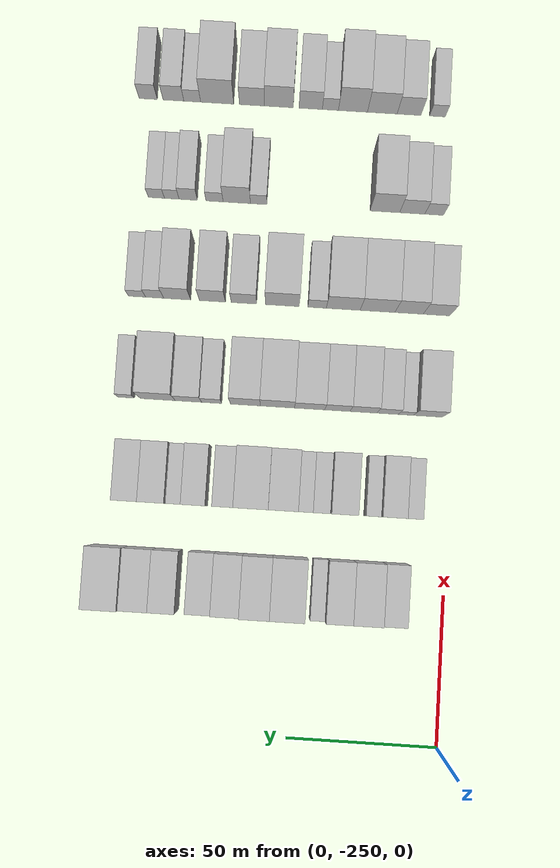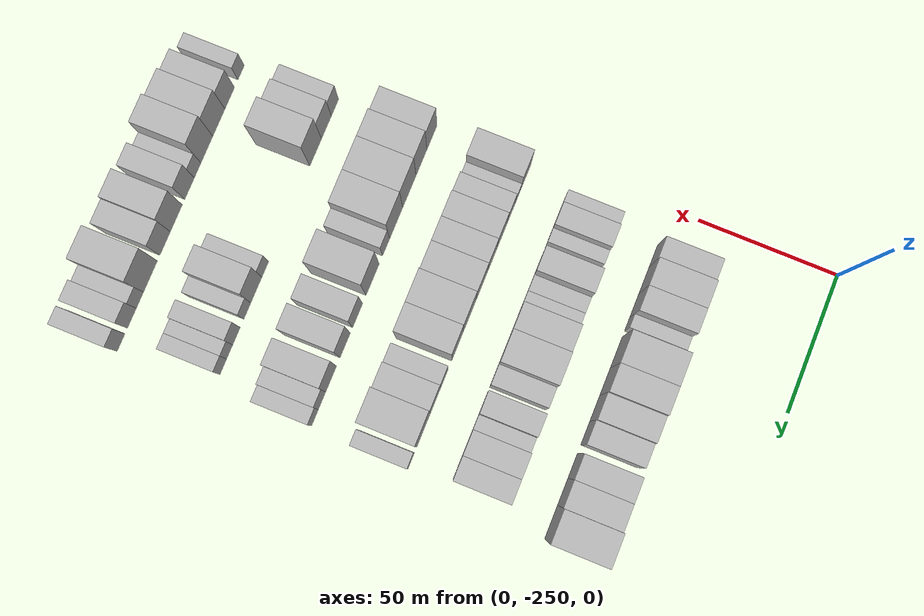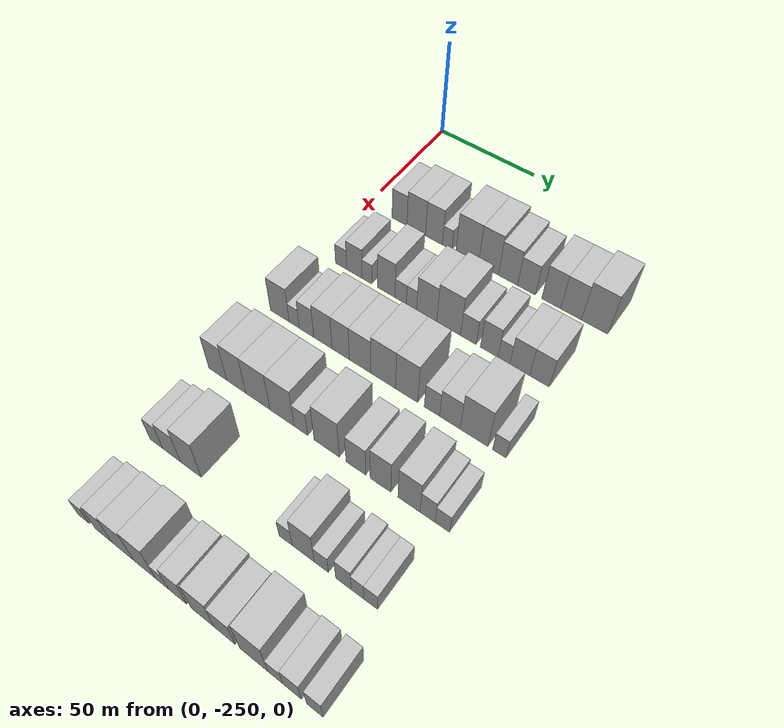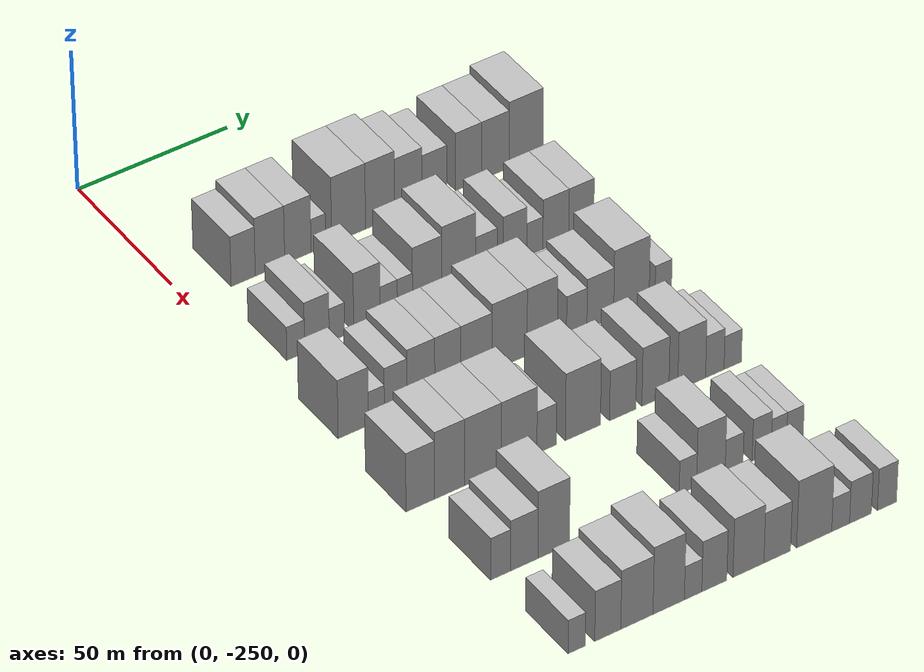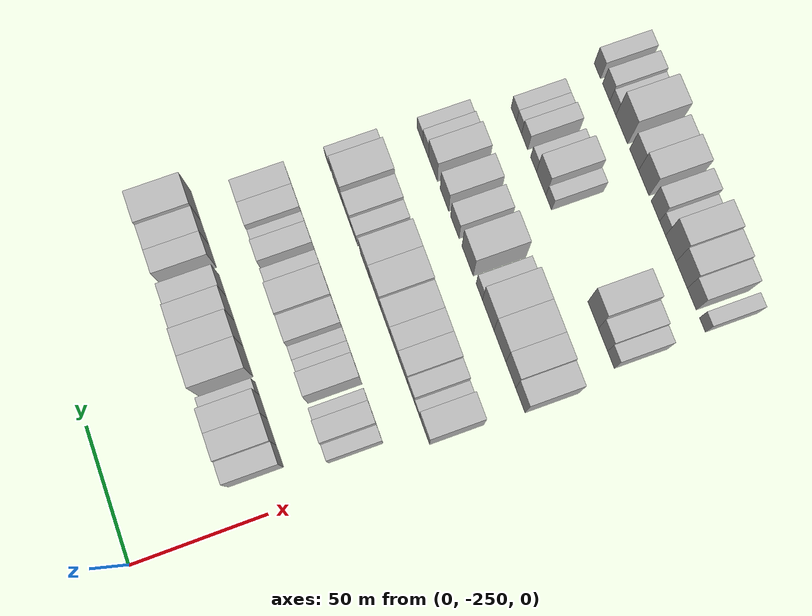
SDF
<sdf version="1.6">
 <world name="default">
  <model name="building_33">
   <static>1</static>
   <pose>50.0000 -232.6946 0 0.000000 0.000000 0.000000</pose>
   <link name="link">
    <pose>0 0 9.00 0 0 0</pose>
    <collision name="collision"><geometry><box><size>20.0000 7.9936 18.0000</size></box></geometry></collision>
    <visual name="visual">
     <cast_shadows>0</cast_shadows>
     <geometry><box><size>20.0000 7.9936 18.0000</size></box></geometry>
     <material>
      <script>
       <uri>model://HANNAS_wall/materials/scripts</uri>
       <uri>model://HANNAS_wall/materials/textures</uri>
       <name>vrc/HANNAS_wall</name>
      </script>
     </material>
    </visual>
   </link>
  </model>
  <model name="building_34">
   <static>1</static>
   <pose>50.0000 -223.8232 0 0.000000 0.000000 0.000000</pose>
   <link name="link">
    <pose>0 0 10.50 0 0 0</pose>
    <collision name="collision"><geometry><box><size>20.0000 9.7493 21.0000</size></box></geometry></collision>
    <visual name="visual">
     <cast_shadows>0</cast_shadows>
     <geometry><box><size>20.0000 9.7493 21.0000</size></box></geometry>
     <material>
      <script>
       <uri>model://HANNAS_wall/materials/scripts</uri>
       <uri>model://HANNAS_wall/materials/textures</uri>
       <name>vrc/HANNAS_wall</name>
      </script>
     </material>
    </visual>
   </link>
  </model>
  <model name="building_35">
   <static>1</static>
   <pose>50.0000 -214.5663 0 0.000000 0.000000 0.000000</pose>
   <link name="link">
    <pose>0 0 10.50 0 0 0</pose>
    <collision name="collision"><geometry><box><size>20.0000 8.7644 21.0000</size></box></geometry></collision>
    <visual name="visual">
     <cast_shadows>0</cast_shadows>
     <geometry><box><size>20.0000 8.7644 21.0000</size></box></geometry>
     <material>
      <script>
       <uri>model://HANNAS_wall/materials/scripts</uri>
       <uri>model://HANNAS_wall/materials/textures</uri>
       <name>vrc/HANNAS_wall</name>
      </script>
     </material>
    </visual>
   </link>
  </model>
  <model name="building_36">
   <static>1</static>
   <pose>50.0000 -207.7610 0 0.000000 0.000000 0.000000</pose>
   <link name="link">
    <pose>0 0 6.00 0 0 0</pose>
    <collision name="collision"><geometry><box><size>20.0000 4.8462 12.0000</size></box></geometry></collision>
    <visual name="visual">
     <cast_shadows>0</cast_shadows>
     <geometry><box><size>20.0000 4.8462 12.0000</size></box></geometry>
     <material>
      <script>
       <uri>model://HANNAS_wall/materials/scripts</uri>
       <uri>model://HANNAS_wall/materials/textures</uri>
       <name>vrc/HANNAS_wall</name>
      </script>
     </material>
    </visual>
   </link>
  </model>
  <model name="building_37">
   <static>1</static>
   <pose>50.0000 -197.6678 0 0.000000 0.000000 0.000000</pose>
   <link name="link">
    <pose>0 0 12.00 0 0 0</pose>
    <collision name="collision"><geometry><box><size>20.0000 11.3402 24.0000</size></box></geometry></collision>
    <visual name="visual">
     <cast_shadows>0</cast_shadows>
     <geometry><box><size>20.0000 11.3402 24.0000</size></box></geometry>
     <material>
      <script>
       <uri>model://HANNAS_wall/materials/scripts</uri>
       <uri>model://HANNAS_wall/materials/textures</uri>
       <name>vrc/HANNAS_wall</name>
      </script>
     </material>
    </visual>
   </link>
  </model>
  <model name="building_38">
   <static>1</static>
   <pose>50.0000 -187.1057 0 0.000000 0.000000 0.000000</pose>
   <link name="link">
    <pose>0 0 12.00 0 0 0</pose>
    <collision name="collision"><geometry><box><size>20.0000 9.7839 24.0000</size></box></geometry></collision>
    <visual name="visual">
     <cast_shadows>0</cast_shadows>
     <geometry><box><size>20.0000 9.7839 24.0000</size></box></geometry>
     <material>
      <script>
       <uri>model://HANNAS_wall/materials/scripts</uri>
       <uri>model://HANNAS_wall/materials/textures</uri>
       <name>vrc/HANNAS_wall</name>
      </script>
     </material>
    </visual>
   </link>
  </model>
  <model name="building_39">
   <static>1</static>
   <pose>50.0000 -177.5722 0 0.000000 0.000000 0.000000</pose>
   <link name="link">
    <pose>0 0 10.50 0 0 0</pose>
    <collision name="collision"><geometry><box><size>20.0000 9.2833 21.0000</size></box></geometry></collision>
    <visual name="visual">
     <cast_shadows>0</cast_shadows>
     <geometry><box><size>20.0000 9.2833 21.0000</size></box></geometry>
     <material>
      <script>
       <uri>model://HANNAS_wall/materials/scripts</uri>
       <uri>model://HANNAS_wall/materials/textures</uri>
       <name>vrc/HANNAS_wall</name>
      </script>
     </material>
    </visual>
   </link>
  </model>
  <model name="building_40">
   <static>1</static>
   <pose>50.0000 -168.7454 0 0.000000 0.000000 0.000000</pose>
   <link name="link">
    <pose>0 0 9.00 0 0 0</pose>
    <collision name="collision"><geometry><box><size>20.0000 8.3702 18.0000</size></box></geometry></collision>
    <visual name="visual">
     <cast_shadows>0</cast_shadows>
     <geometry><box><size>20.0000 8.3702 18.0000</size></box></geometry>
     <material>
      <script>
       <uri>model://HANNAS_wall/materials/scripts</uri>
       <uri>model://HANNAS_wall/materials/textures</uri>
       <name>vrc/HANNAS_wall</name>
      </script>
     </material>
    </visual>
   </link>
  </model>
  <model name="building_41">
   <static>1</static>
   <pose>50.0000 -157.1957 0 0.000000 0.000000 0.000000</pose>
   <link name="link">
    <pose>0 0 10.50 0 0 0</pose>
    <collision name="collision"><geometry><box><size>20.0000 8.7293 21.0000</size></box></geometry></collision>
    <visual name="visual">
     <cast_shadows>0</cast_shadows>
     <geometry><box><size>20.0000 8.7293 21.0000</size></box></geometry>
     <material>
      <script>
       <uri>model://HANNAS_wall/materials/scripts</uri>
       <uri>model://HANNAS_wall/materials/textures</uri>
       <name>vrc/HANNAS_wall</name>
      </script>
     </material>
    </visual>
   </link>
  </model>
  <model name="building_42">
   <static>1</static>
   <pose>50.0000 -148.1162 0 0.000000 0.000000 0.000000</pose>
   <link name="link">
    <pose>0 0 10.50 0 0 0</pose>
    <collision name="collision"><geometry><box><size>20.0000 9.4296 21.0000</size></box></geometry></collision>
    <visual name="visual">
     <cast_shadows>0</cast_shadows>
     <geometry><box><size>20.0000 9.4296 21.0000</size></box></geometry>
     <material>
      <script>
       <uri>model://HANNAS_wall/materials/scripts</uri>
       <uri>model://HANNAS_wall/materials/textures</uri>
       <name>vrc/HANNAS_wall</name>
      </script>
     </material>
    </visual>
   </link>
  </model>
  <model name="building_43">
   <static>1</static>
   <pose>50.0000 -137.5427 0 0.000000 0.000000 0.000000</pose>
   <link name="link">
    <pose>0 0 12.00 0 0 0</pose>
    <collision name="collision"><geometry><box><size>20.0000 11.7174 24.0000</size></box></geometry></collision>
    <visual name="visual">
     <cast_shadows>0</cast_shadows>
     <geometry><box><size>20.0000 11.7174 24.0000</size></box></geometry>
     <material>
      <script>
       <uri>model://HANNAS_wall/materials/scripts</uri>
       <uri>model://HANNAS_wall/materials/textures</uri>
       <name>vrc/HANNAS_wall</name>
      </script>
     </material>
    </visual>
   </link>
  </model>
  <model name="building_157">
   <static>1</static>
   <pose>85.0000 -237.7383 0 0.000000 0.000000 0.000000</pose>
   <link name="link">
    <pose>0 0 6.00 0 0 0</pose>
    <collision name="collision"><geometry><box><size>20.0000 5.8213 12.0000</size></box></geometry></collision>
    <visual name="visual">
     <cast_shadows>0</cast_shadows>
     <geometry><box><size>20.0000 5.8213 12.0000</size></box></geometry>
     <material>
      <script>
       <uri>model://HANNAS_wall/materials/scripts</uri>
       <uri>model://HANNAS_wall/materials/textures</uri>
       <name>vrc/HANNAS_wall</name>
      </script>
     </material>
    </visual>
   </link>
  </model>
  <model name="building_158">
   <static>1</static>
   <pose>85.0000 -230.7864 0 0.000000 0.000000 0.000000</pose>
   <link name="link">
    <pose>0 0 9.00 0 0 0</pose>
    <collision name="collision"><geometry><box><size>20.0000 8.0825 18.0000</size></box></geometry></collision>
    <visual name="visual">
     <cast_shadows>0</cast_shadows>
     <geometry><box><size>20.0000 8.0825 18.0000</size></box></geometry>
     <material>
      <script>
       <uri>model://HANNAS_wall/materials/scripts</uri>
       <uri>model://HANNAS_wall/materials/textures</uri>
       <name>vrc/HANNAS_wall</name>
      </script>
     </material>
    </visual>
   </link>
  </model>
  <model name="building_159">
   <static>1</static>
   <pose>85.0000 -224.2252 0 0.000000 0.000000 0.000000</pose>
   <link name="link">
    <pose>0 0 6.00 0 0 0</pose>
    <collision name="collision"><geometry><box><size>20.0000 5.0398 12.0000</size></box></geometry></collision>
    <visual name="visual">
     <cast_shadows>0</cast_shadows>
     <geometry><box><size>20.0000 5.0398 12.0000</size></box></geometry>
     <material>
      <script>
       <uri>model://HANNAS_wall/materials/scripts</uri>
       <uri>model://HANNAS_wall/materials/textures</uri>
       <name>vrc/HANNAS_wall</name>
      </script>
     </material>
    </visual>
   </link>
  </model>
  <model name="building_160">
   <static>1</static>
   <pose>85.0000 -214.3400 0 0.000000 0.000000 0.000000</pose>
   <link name="link">
    <pose>0 0 10.50 0 0 0</pose>
    <collision name="collision"><geometry><box><size>20.0000 8.7306 21.0000</size></box></geometry></collision>
    <visual name="visual">
     <cast_shadows>0</cast_shadows>
     <geometry><box><size>20.0000 8.7306 21.0000</size></box></geometry>
     <material>
      <script>
       <uri>model://HANNAS_wall/materials/scripts</uri>
       <uri>model://HANNAS_wall/materials/textures</uri>
       <name>vrc/HANNAS_wall</name>
      </script>
     </material>
    </visual>
   </link>
  </model>
  <model name="building_161">
   <static>1</static>
   <pose>85.0000 -207.1193 0 0.000000 0.000000 0.000000</pose>
   <link name="link">
    <pose>0 0 6.00 0 0 0</pose>
    <collision name="collision"><geometry><box><size>20.0000 5.7108 12.0000</size></box></geometry></collision>
    <visual name="visual">
     <cast_shadows>0</cast_shadows>
     <geometry><box><size>20.0000 5.7108 12.0000</size></box></geometry>
     <material>
      <script>
       <uri>model://HANNAS_wall/materials/scripts</uri>
       <uri>model://HANNAS_wall/materials/textures</uri>
       <name>vrc/HANNAS_wall</name>
      </script>
     </material>
    </visual>
   </link>
  </model>
  <model name="building_162">
   <static>1</static>
   <pose>85.0000 -201.7443 0 0.000000 0.000000 0.000000</pose>
   <link name="link">
    <pose>0 0 6.00 0 0 0</pose>
    <collision name="collision"><geometry><box><size>20.0000 5.0394 12.0000</size></box></geometry></collision>
    <visual name="visual">
     <cast_shadows>0</cast_shadows>
     <geometry><box><size>20.0000 5.0394 12.0000</size></box></geometry>
     <material>
      <script>
       <uri>model://HANNAS_wall/materials/scripts</uri>
       <uri>model://HANNAS_wall/materials/textures</uri>
       <name>vrc/HANNAS_wall</name>
      </script>
     </material>
    </visual>
   </link>
  </model>
  <model name="building_163">
   <static>1</static>
   <pose>85.0000 -194.3508 0 0.000000 0.000000 0.000000</pose>
   <link name="link">
    <pose>0 0 10.50 0 0 0</pose>
    <collision name="collision"><geometry><box><size>20.0000 9.7474 21.0000</size></box></geometry></collision>
    <visual name="visual">
     <cast_shadows>0</cast_shadows>
     <geometry><box><size>20.0000 9.7474 21.0000</size></box></geometry>
     <material>
      <script>
       <uri>model://HANNAS_wall/materials/scripts</uri>
       <uri>model://HANNAS_wall/materials/textures</uri>
       <name>vrc/HANNAS_wall</name>
      </script>
     </material>
    </visual>
   </link>
  </model>
  <model name="building_164">
   <static>1</static>
   <pose>85.0000 -183.8137 0 0.000000 0.000000 0.000000</pose>
   <link name="link">
    <pose>0 0 12.00 0 0 0</pose>
    <collision name="collision"><geometry><box><size>20.0000 11.3268 24.0000</size></box></geometry></collision>
    <visual name="visual">
     <cast_shadows>0</cast_shadows>
     <geometry><box><size>20.0000 11.3268 24.0000</size></box></geometry>
     <material>
      <script>
       <uri>model://HANNAS_wall/materials/scripts</uri>
       <uri>model://HANNAS_wall/materials/textures</uri>
       <name>vrc/HANNAS_wall</name>
      </script>
     </material>
    </visual>
   </link>
  </model>
  <model name="building_165">
   <static>1</static>
   <pose>85.0000 -174.5370 0 0.000000 0.000000 0.000000</pose>
   <link name="link">
    <pose>0 0 7.50 0 0 0</pose>
    <collision name="collision"><geometry><box><size>20.0000 7.2267 15.0000</size></box></geometry></collision>
    <visual name="visual">
     <cast_shadows>0</cast_shadows>
     <geometry><box><size>20.0000 7.2267 15.0000</size></box></geometry>
     <material>
      <script>
       <uri>model://HANNAS_wall/materials/scripts</uri>
       <uri>model://HANNAS_wall/materials/textures</uri>
       <name>vrc/HANNAS_wall</name>
      </script>
     </material>
    </visual>
   </link>
  </model>
  <model name="building_166">
   <static>1</static>
   <pose>85.0000 -164.9073 0 0.000000 0.000000 0.000000</pose>
   <link name="link">
    <pose>0 0 9.00 0 0 0</pose>
    <collision name="collision"><geometry><box><size>20.0000 8.0326 18.0000</size></box></geometry></collision>
    <visual name="visual">
     <cast_shadows>0</cast_shadows>
     <geometry><box><size>20.0000 8.0326 18.0000</size></box></geometry>
     <material>
      <script>
       <uri>model://HANNAS_wall/materials/scripts</uri>
       <uri>model://HANNAS_wall/materials/textures</uri>
       <name>vrc/HANNAS_wall</name>
      </script>
     </material>
    </visual>
   </link>
  </model>
  <model name="building_167">
   <static>1</static>
   <pose>85.0000 -158.2112 0 0.000000 0.000000 0.000000</pose>
   <link name="link">
    <pose>0 0 6.00 0 0 0</pose>
    <collision name="collision"><geometry><box><size>20.0000 5.3596 12.0000</size></box></geometry></collision>
    <visual name="visual">
     <cast_shadows>0</cast_shadows>
     <geometry><box><size>20.0000 5.3596 12.0000</size></box></geometry>
     <material>
      <script>
       <uri>model://HANNAS_wall/materials/scripts</uri>
       <uri>model://HANNAS_wall/materials/textures</uri>
       <name>vrc/HANNAS_wall</name>
      </script>
     </material>
    </visual>
   </link>
  </model>
  <model name="building_168">
   <static>1</static>
   <pose>85.0000 -151.1226 0 0.000000 0.000000 0.000000</pose>
   <link name="link">
    <pose>0 0 9.00 0 0 0</pose>
    <collision name="collision"><geometry><box><size>20.0000 8.8175 18.0000</size></box></geometry></collision>
    <visual name="visual">
     <cast_shadows>0</cast_shadows>
     <geometry><box><size>20.0000 8.8175 18.0000</size></box></geometry>
     <material>
      <script>
       <uri>model://HANNAS_wall/materials/scripts</uri>
       <uri>model://HANNAS_wall/materials/textures</uri>
       <name>vrc/HANNAS_wall</name>
      </script>
     </material>
    </visual>
   </link>
  </model>
  <model name="building_169">
   <static>1</static>
   <pose>85.0000 -142.4586 0 0.000000 0.000000 0.000000</pose>
   <link name="link">
    <pose>0 0 9.00 0 0 0</pose>
    <collision name="collision"><geometry><box><size>20.0000 8.5105 18.0000</size></box></geometry></collision>
    <visual name="visual">
     <cast_shadows>0</cast_shadows>
     <geometry><box><size>20.0000 8.5105 18.0000</size></box></geometry>
     <material>
      <script>
       <uri>model://HANNAS_wall/materials/scripts</uri>
       <uri>model://HANNAS_wall/materials/textures</uri>
       <name>vrc/HANNAS_wall</name>
      </script>
     </material>
    </visual>
   </link>
  </model>
  <model name="building_285">
   <static>1</static>
   <pose>120.0000 -241.5943 0 0.000000 0.000000 0.000000</pose>
   <link name="link">
    <pose>0 0 10.50 0 0 0</pose>
    <collision name="collision"><geometry><box><size>20.0000 9.8610 21.0000</size></box></geometry></collision>
    <visual name="visual">
     <cast_shadows>0</cast_shadows>
     <geometry><box><size>20.0000 9.8610 21.0000</size></box></geometry>
     <material>
      <script>
       <uri>model://HANNAS_wall/materials/scripts</uri>
       <uri>model://HANNAS_wall/materials/textures</uri>
       <name>vrc/HANNAS_wall</name>
      </script>
     </material>
    </visual>
   </link>
  </model>
  <model name="building_286">
   <static>1</static>
   <pose>120.0000 -234.0752 0 0.000000 0.000000 0.000000</pose>
   <link name="link">
    <pose>0 0 6.00 0 0 0</pose>
    <collision name="collision"><geometry><box><size>20.0000 5.1771 12.0000</size></box></geometry></collision>
    <visual name="visual">
     <cast_shadows>0</cast_shadows>
     <geometry><box><size>20.0000 5.1771 12.0000</size></box></geometry>
     <material>
      <script>
       <uri>model://HANNAS_wall/materials/scripts</uri>
       <uri>model://HANNAS_wall/materials/textures</uri>
       <name>vrc/HANNAS_wall</name>
      </script>
     </material>
    </visual>
   </link>
  </model>
  <model name="building_287">
   <static>1</static>
   <pose>120.0000 -227.8074 0 0.000000 0.000000 0.000000</pose>
   <link name="link">
    <pose>0 0 9.00 0 0 0</pose>
    <collision name="collision"><geometry><box><size>20.0000 7.3585 18.0000</size></box></geometry></collision>
    <visual name="visual">
     <cast_shadows>0</cast_shadows>
     <geometry><box><size>20.0000 7.3585 18.0000</size></box></geometry>
     <material>
      <script>
       <uri>model://HANNAS_wall/materials/scripts</uri>
       <uri>model://HANNAS_wall/materials/textures</uri>
       <name>vrc/HANNAS_wall</name>
      </script>
     </material>
    </visual>
   </link>
  </model>
  <model name="building_288">
   <static>1</static>
   <pose>120.0000 -219.5639 0 0.000000 0.000000 0.000000</pose>
   <link name="link">
    <pose>0 0 10.50 0 0 0</pose>
    <collision name="collision"><geometry><box><size>20.0000 9.1284 21.0000</size></box></geometry></collision>
    <visual name="visual">
     <cast_shadows>0</cast_shadows>
     <geometry><box><size>20.0000 9.1284 21.0000</size></box></geometry>
     <material>
      <script>
       <uri>model://HANNAS_wall/materials/scripts</uri>
       <uri>model://HANNAS_wall/materials/textures</uri>
       <name>vrc/HANNAS_wall</name>
      </script>
     </material>
    </visual>
   </link>
  </model>
  <model name="building_289">
   <static>1</static>
   <pose>120.0000 -210.7158 0 0.000000 0.000000 0.000000</pose>
   <link name="link">
    <pose>0 0 10.50 0 0 0</pose>
    <collision name="collision"><geometry><box><size>20.0000 8.5678 21.0000</size></box></geometry></collision>
    <visual name="visual">
     <cast_shadows>0</cast_shadows>
     <geometry><box><size>20.0000 8.5678 21.0000</size></box></geometry>
     <material>
      <script>
       <uri>model://HANNAS_wall/materials/scripts</uri>
       <uri>model://HANNAS_wall/materials/textures</uri>
       <name>vrc/HANNAS_wall</name>
      </script>
     </material>
    </visual>
   </link>
  </model>
  <model name="building_290">
   <static>1</static>
   <pose>120.0000 -201.2927 0 0.000000 0.000000 0.000000</pose>
   <link name="link">
    <pose>0 0 10.50 0 0 0</pose>
    <collision name="collision"><geometry><box><size>20.0000 10.2783 21.0000</size></box></geometry></collision>
    <visual name="visual">
     <cast_shadows>0</cast_shadows>
     <geometry><box><size>20.0000 10.2783 21.0000</size></box></geometry>
     <material>
      <script>
       <uri>model://HANNAS_wall/materials/scripts</uri>
       <uri>model://HANNAS_wall/materials/textures</uri>
       <name>vrc/HANNAS_wall</name>
      </script>
     </material>
    </visual>
   </link>
  </model>
  <model name="building_291">
   <static>1</static>
   <pose>120.0000 -190.3568 0 0.000000 0.000000 0.000000</pose>
   <link name="link">
    <pose>0 0 12.00 0 0 0</pose>
    <collision name="collision"><geometry><box><size>20.0000 11.5934 24.0000</size></box></geometry></collision>
    <visual name="visual">
     <cast_shadows>0</cast_shadows>
     <geometry><box><size>20.0000 11.5934 24.0000</size></box></geometry>
     <material>
      <script>
       <uri>model://HANNAS_wall/materials/scripts</uri>
       <uri>model://HANNAS_wall/materials/textures</uri>
       <name>vrc/HANNAS_wall</name>
      </script>
     </material>
    </visual>
   </link>
  </model>
  <model name="building_292">
   <static>1</static>
   <pose>120.0000 -179.4773 0 0.000000 0.000000 0.000000</pose>
   <link name="link">
    <pose>0 0 12.00 0 0 0</pose>
    <collision name="collision"><geometry><box><size>20.0000 10.1656 24.0000</size></box></geometry></collision>
    <visual name="visual">
     <cast_shadows>0</cast_shadows>
     <geometry><box><size>20.0000 10.1656 24.0000</size></box></geometry>
     <material>
      <script>
       <uri>model://HANNAS_wall/materials/scripts</uri>
       <uri>model://HANNAS_wall/materials/textures</uri>
       <name>vrc/HANNAS_wall</name>
      </script>
     </material>
    </visual>
   </link>
  </model>
  <model name="building_293">
   <static>1</static>
   <pose>120.0000 -167.9803 0 0.000000 0.000000 0.000000</pose>
   <link name="link">
    <pose>0 0 7.50 0 0 0</pose>
    <collision name="collision"><geometry><box><size>20.0000 6.8285 15.0000</size></box></geometry></collision>
    <visual name="visual">
     <cast_shadows>0</cast_shadows>
     <geometry><box><size>20.0000 6.8285 15.0000</size></box></geometry>
     <material>
      <script>
       <uri>model://HANNAS_wall/materials/scripts</uri>
       <uri>model://HANNAS_wall/materials/textures</uri>
       <name>vrc/HANNAS_wall</name>
      </script>
     </material>
    </visual>
   </link>
  </model>
  <model name="building_294">
   <static>1</static>
   <pose>120.0000 -160.0704 0 0.000000 0.000000 0.000000</pose>
   <link name="link">
    <pose>0 0 9.00 0 0 0</pose>
    <collision name="collision"><geometry><box><size>20.0000 8.9911 18.0000</size></box></geometry></collision>
    <visual name="visual">
     <cast_shadows>0</cast_shadows>
     <geometry><box><size>20.0000 8.9911 18.0000</size></box></geometry>
     <material>
      <script>
       <uri>model://HANNAS_wall/materials/scripts</uri>
       <uri>model://HANNAS_wall/materials/textures</uri>
       <name>vrc/HANNAS_wall</name>
      </script>
     </material>
    </visual>
   </link>
  </model>
  <model name="building_295">
   <static>1</static>
   <pose>120.0000 -149.6045 0 0.000000 0.000000 0.000000</pose>
   <link name="link">
    <pose>0 0 12.00 0 0 0</pose>
    <collision name="collision"><geometry><box><size>20.0000 11.9408 24.0000</size></box></geometry></collision>
    <visual name="visual">
     <cast_shadows>0</cast_shadows>
     <geometry><box><size>20.0000 11.9408 24.0000</size></box></geometry>
     <material>
      <script>
       <uri>model://HANNAS_wall/materials/scripts</uri>
       <uri>model://HANNAS_wall/materials/textures</uri>
       <name>vrc/HANNAS_wall</name>
      </script>
     </material>
    </visual>
   </link>
  </model>
  <model name="building_296">
   <static>1</static>
   <pose>120.0000 -138.8288 0 0.000000 0.000000 0.000000</pose>
   <link name="link">
    <pose>0 0 6.00 0 0 0</pose>
    <collision name="collision"><geometry><box><size>20.0000 5.6105 12.0000</size></box></geometry></collision>
    <visual name="visual">
     <cast_shadows>0</cast_shadows>
     <geometry><box><size>20.0000 5.6105 12.0000</size></box></geometry>
     <material>
      <script>
       <uri>model://HANNAS_wall/materials/scripts</uri>
       <uri>model://HANNAS_wall/materials/textures</uri>
       <name>vrc/HANNAS_wall</name>
      </script>
     </material>
    </visual>
   </link>
  </model>
  <model name="building_413">
   <static>1</static>
   <pose>155.0000 -242.8808 0 0.000000 0.000000 0.000000</pose>
   <link name="link">
    <pose>0 0 10.50 0 0 0</pose>
    <collision name="collision"><geometry><box><size>20.0000 9.1990 21.0000</size></box></geometry></collision>
    <visual name="visual">
     <cast_shadows>0</cast_shadows>
     <geometry><box><size>20.0000 9.1990 21.0000</size></box></geometry>
     <material>
      <script>
       <uri>model://HANNAS_wall/materials/scripts</uri>
       <uri>model://HANNAS_wall/materials/textures</uri>
       <name>vrc/HANNAS_wall</name>
      </script>
     </material>
    </visual>
   </link>
  </model>
  <model name="building_414">
   <static>1</static>
   <pose>155.0000 -233.4116 0 0.000000 0.000000 0.000000</pose>
   <link name="link">
    <pose>0 0 12.00 0 0 0</pose>
    <collision name="collision"><geometry><box><size>20.0000 9.7393 24.0000</size></box></geometry></collision>
    <visual name="visual">
     <cast_shadows>0</cast_shadows>
     <geometry><box><size>20.0000 9.7393 24.0000</size></box></geometry>
     <material>
      <script>
       <uri>model://HANNAS_wall/materials/scripts</uri>
       <uri>model://HANNAS_wall/materials/textures</uri>
       <name>vrc/HANNAS_wall</name>
      </script>
     </material>
    </visual>
   </link>
  </model>
  <model name="building_415">
   <static>1</static>
   <pose>155.0000 -222.5590 0 0.000000 0.000000 0.000000</pose>
   <link name="link">
    <pose>0 0 12.00 0 0 0</pose>
    <collision name="collision"><geometry><box><size>20.0000 11.9658 24.0000</size></box></geometry></collision>
    <visual name="visual">
     <cast_shadows>0</cast_shadows>
     <geometry><box><size>20.0000 11.9658 24.0000</size></box></geometry>
     <material>
      <script>
       <uri>model://HANNAS_wall/materials/scripts</uri>
       <uri>model://HANNAS_wall/materials/textures</uri>
       <name>vrc/HANNAS_wall</name>
      </script>
     </material>
    </visual>
   </link>
  </model>
  <model name="building_416">
   <static>1</static>
   <pose>155.0000 -210.7728 0 0.000000 0.000000 0.000000</pose>
   <link name="link">
    <pose>0 0 12.00 0 0 0</pose>
    <collision name="collision"><geometry><box><size>20.0000 11.6068 24.0000</size></box></geometry></collision>
    <visual name="visual">
     <cast_shadows>0</cast_shadows>
     <geometry><box><size>20.0000 11.6068 24.0000</size></box></geometry>
     <material>
      <script>
       <uri>model://HANNAS_wall/materials/scripts</uri>
       <uri>model://HANNAS_wall/materials/textures</uri>
       <name>vrc/HANNAS_wall</name>
      </script>
     </material>
    </visual>
   </link>
  </model>
  <model name="building_417">
   <static>1</static>
   <pose>155.0000 -201.7993 0 0.000000 0.000000 0.000000</pose>
   <link name="link">
    <pose>0 0 7.50 0 0 0</pose>
    <collision name="collision"><geometry><box><size>20.0000 6.3400 15.0000</size></box></geometry></collision>
    <visual name="visual">
     <cast_shadows>0</cast_shadows>
     <geometry><box><size>20.0000 6.3400 15.0000</size></box></geometry>
     <material>
      <script>
       <uri>model://HANNAS_wall/materials/scripts</uri>
       <uri>model://HANNAS_wall/materials/textures</uri>
       <name>vrc/HANNAS_wall</name>
      </script>
     </material>
    </visual>
   </link>
  </model>
  <model name="building_418">
   <static>1</static>
   <pose>155.0000 -189.8491 0 0.000000 0.000000 0.000000</pose>
   <link name="link">
    <pose>0 0 12.00 0 0 0</pose>
    <collision name="collision"><geometry><box><size>20.0000 11.5604 24.0000</size></box></geometry></collision>
    <visual name="visual">
     <cast_shadows>0</cast_shadows>
     <geometry><box><size>20.0000 11.5604 24.0000</size></box></geometry>
     <material>
      <script>
       <uri>model://HANNAS_wall/materials/scripts</uri>
       <uri>model://HANNAS_wall/materials/textures</uri>
       <name>vrc/HANNAS_wall</name>
      </script>
     </material>
    </visual>
   </link>
  </model>
  <model name="building_419">
   <static>1</static>
   <pose>155.0000 -176.7002 0 0.000000 0.000000 0.000000</pose>
   <link name="link">
    <pose>0 0 9.00 0 0 0</pose>
    <collision name="collision"><geometry><box><size>20.0000 8.7374 18.0000</size></box></geometry></collision>
    <visual name="visual">
     <cast_shadows>0</cast_shadows>
     <geometry><box><size>20.0000 8.7374 18.0000</size></box></geometry>
     <material>
      <script>
       <uri>model://HANNAS_wall/materials/scripts</uri>
       <uri>model://HANNAS_wall/materials/textures</uri>
       <name>vrc/HANNAS_wall</name>
      </script>
     </material>
    </visual>
   </link>
  </model>
  <model name="building_420">
   <static>1</static>
   <pose>155.0000 -165.8627 0 0.000000 0.000000 0.000000</pose>
   <link name="link">
    <pose>0 0 10.50 0 0 0</pose>
    <collision name="collision"><geometry><box><size>20.0000 8.9376 21.0000</size></box></geometry></collision>
    <visual name="visual">
     <cast_shadows>0</cast_shadows>
     <geometry><box><size>20.0000 8.9376 21.0000</size></box></geometry>
     <material>
      <script>
       <uri>model://HANNAS_wall/materials/scripts</uri>
       <uri>model://HANNAS_wall/materials/textures</uri>
       <name>vrc/HANNAS_wall</name>
      </script>
     </material>
    </visual>
   </link>
  </model>
  <model name="building_421">
   <static>1</static>
   <pose>155.0000 -153.7390 0 0.000000 0.000000 0.000000</pose>
   <link name="link">
    <pose>0 0 10.50 0 0 0</pose>
    <collision name="collision"><geometry><box><size>20.0000 9.3100 21.0000</size></box></geometry></collision>
    <visual name="visual">
     <cast_shadows>0</cast_shadows>
     <geometry><box><size>20.0000 9.3100 21.0000</size></box></geometry>
     <material>
      <script>
       <uri>model://HANNAS_wall/materials/scripts</uri>
       <uri>model://HANNAS_wall/materials/textures</uri>
       <name>vrc/HANNAS_wall</name>
      </script>
     </material>
    </visual>
   </link>
  </model>
  <model name="building_422">
   <static>1</static>
   <pose>155.0000 -145.9779 0 0.000000 0.000000 0.000000</pose>
   <link name="link">
    <pose>0 0 7.50 0 0 0</pose>
    <collision name="collision"><geometry><box><size>20.0000 6.2122 15.0000</size></box></geometry></collision>
    <visual name="visual">
     <cast_shadows>0</cast_shadows>
     <geometry><box><size>20.0000 6.2122 15.0000</size></box></geometry>
     <material>
      <script>
       <uri>model://HANNAS_wall/materials/scripts</uri>
       <uri>model://HANNAS_wall/materials/textures</uri>
       <name>vrc/HANNAS_wall</name>
      </script>
     </material>
    </visual>
   </link>
  </model>
  <model name="building_423">
   <static>1</static>
   <pose>155.0000 -139.9375 0 0.000000 0.000000 0.000000</pose>
   <link name="link">
    <pose>0 0 6.00 0 0 0</pose>
    <collision name="collision"><geometry><box><size>20.0000 5.8687 12.0000</size></box></geometry></collision>
    <visual name="visual">
     <cast_shadows>0</cast_shadows>
     <geometry><box><size>20.0000 5.8687 12.0000</size></box></geometry>
     <material>
      <script>
       <uri>model://HANNAS_wall/materials/scripts</uri>
       <uri>model://HANNAS_wall/materials/textures</uri>
       <name>vrc/HANNAS_wall</name>
      </script>
     </material>
    </visual>
   </link>
  </model>
  <model name="building_543">
   <static>1</static>
   <pose>190.0000 -240.3666 0 0.000000 0.000000 0.000000</pose>
   <link name="link">
    <pose>0 0 7.50 0 0 0</pose>
    <collision name="collision"><geometry><box><size>20.0000 6.4362 15.0000</size></box></geometry></collision>
    <visual name="visual">
     <cast_shadows>0</cast_shadows>
     <geometry><box><size>20.0000 6.4362 15.0000</size></box></geometry>
     <material>
      <script>
       <uri>model://HANNAS_wall/materials/scripts</uri>
       <uri>model://HANNAS_wall/materials/textures</uri>
       <name>vrc/HANNAS_wall</name>
      </script>
     </material>
    </visual>
   </link>
  </model>
  <model name="building_544">
   <static>1</static>
   <pose>190.0000 -232.7817 0 0.000000 0.000000 0.000000</pose>
   <link name="link">
    <pose>0 0 9.00 0 0 0</pose>
    <collision name="collision"><geometry><box><size>20.0000 8.7336 18.0000</size></box></geometry></collision>
    <visual name="visual">
     <cast_shadows>0</cast_shadows>
     <geometry><box><size>20.0000 8.7336 18.0000</size></box></geometry>
     <material>
      <script>
       <uri>model://HANNAS_wall/materials/scripts</uri>
       <uri>model://HANNAS_wall/materials/textures</uri>
       <name>vrc/HANNAS_wall</name>
      </script>
     </material>
    </visual>
   </link>
  </model>
  <model name="building_545">
   <static>1</static>
   <pose>190.0000 -223.2864 0 0.000000 0.000000 0.000000</pose>
   <link name="link">
    <pose>0 0 12.00 0 0 0</pose>
    <collision name="collision"><geometry><box><size>20.0000 10.2569 24.0000</size></box></geometry></collision>
    <visual name="visual">
     <cast_shadows>0</cast_shadows>
     <geometry><box><size>20.0000 10.2569 24.0000</size></box></geometry>
     <material>
      <script>
       <uri>model://HANNAS_wall/materials/scripts</uri>
       <uri>model://HANNAS_wall/materials/textures</uri>
       <name>vrc/HANNAS_wall</name>
      </script>
     </material>
    </visual>
   </link>
  </model>
  <model name="building_546">
   <static>1</static>
   <pose>190.0000 -179.5239 0 0.000000 0.000000 0.000000</pose>
   <link name="link">
    <pose>0 0 6.00 0 0 0</pose>
    <collision name="collision"><geometry><box><size>20.0000 5.7560 12.0000</size></box></geometry></collision>
    <visual name="visual">
     <cast_shadows>0</cast_shadows>
     <geometry><box><size>20.0000 5.7560 12.0000</size></box></geometry>
     <material>
      <script>
       <uri>model://HANNAS_wall/materials/scripts</uri>
       <uri>model://HANNAS_wall/materials/textures</uri>
       <name>vrc/HANNAS_wall</name>
      </script>
     </material>
    </visual>
   </link>
  </model>
  <model name="building_547">
   <static>1</static>
   <pose>190.0000 -171.9340 0 0.000000 0.000000 0.000000</pose>
   <link name="link">
    <pose>0 0 10.50 0 0 0</pose>
    <collision name="collision"><geometry><box><size>20.0000 9.4238 21.0000</size></box></geometry></collision>
    <visual name="visual">
     <cast_shadows>0</cast_shadows>
     <geometry><box><size>20.0000 9.4238 21.0000</size></box></geometry>
     <material>
      <script>
       <uri>model://HANNAS_wall/materials/scripts</uri>
       <uri>model://HANNAS_wall/materials/textures</uri>
       <name>vrc/HANNAS_wall</name>
      </script>
     </material>
    </visual>
   </link>
  </model>
  <model name="building_548">
   <static>1</static>
   <pose>190.0000 -164.2504 0 0.000000 0.000000 0.000000</pose>
   <link name="link">
    <pose>0 0 6.00 0 0 0</pose>
    <collision name="collision"><geometry><box><size>20.0000 5.9435 12.0000</size></box></geometry></collision>
    <visual name="visual">
     <cast_shadows>0</cast_shadows>
     <geometry><box><size>20.0000 5.9435 12.0000</size></box></geometry>
     <material>
      <script>
       <uri>model://HANNAS_wall/materials/scripts</uri>
       <uri>model://HANNAS_wall/materials/textures</uri>
       <name>vrc/HANNAS_wall</name>
      </script>
     </material>
    </visual>
   </link>
  </model>
  <model name="building_549">
   <static>1</static>
   <pose>190.0000 -155.1055 0 0.000000 0.000000 0.000000</pose>
   <link name="link">
    <pose>0 0 7.50 0 0 0</pose>
    <collision name="collision"><geometry><box><size>20.0000 6.3463 15.0000</size></box></geometry></collision>
    <visual name="visual">
     <cast_shadows>0</cast_shadows>
     <geometry><box><size>20.0000 6.3463 15.0000</size></box></geometry>
     <material>
      <script>
       <uri>model://HANNAS_wall/materials/scripts</uri>
       <uri>model://HANNAS_wall/materials/textures</uri>
       <name>vrc/HANNAS_wall</name>
      </script>
     </material>
    </visual>
   </link>
  </model>
  <model name="building_550">
   <static>1</static>
   <pose>190.0000 -149.3962 0 0.000000 0.000000 0.000000</pose>
   <link name="link">
    <pose>0 0 6.00 0 0 0</pose>
    <collision name="collision"><geometry><box><size>20.0000 5.0722 12.0000</size></box></geometry></collision>
    <visual name="visual">
     <cast_shadows>0</cast_shadows>
     <geometry><box><size>20.0000 5.0722 12.0000</size></box></geometry>
     <material>
      <script>
       <uri>model://HANNAS_wall/materials/scripts</uri>
       <uri>model://HANNAS_wall/materials/textures</uri>
       <name>vrc/HANNAS_wall</name>
      </script>
     </material>
    </visual>
   </link>
  </model>
  <model name="building_551">
   <static>1</static>
   <pose>190.0000 -144.0581 0 0.000000 0.000000 0.000000</pose>
   <link name="link">
    <pose>0 0 6.00 0 0 0</pose>
    <collision name="collision"><geometry><box><size>20.0000 5.6041 12.0000</size></box></geometry></collision>
    <visual name="visual">
     <cast_shadows>0</cast_shadows>
     <geometry><box><size>20.0000 5.6041 12.0000</size></box></geometry>
     <material>
      <script>
       <uri>model://HANNAS_wall/materials/scripts</uri>
       <uri>model://HANNAS_wall/materials/textures</uri>
       <name>vrc/HANNAS_wall</name>
      </script>
     </material>
    </visual>
   </link>
  </model>
  <model name="building_665">
   <static>1</static>
   <pose>225.0000 -239.7709 0 0.000000 0.000000 0.000000</pose>
   <link name="link">
    <pose>0 0 6.00 0 0 0</pose>
    <collision name="collision"><geometry><box><size>20.0000 5.4879 12.0000</size></box></geometry></collision>
    <visual name="visual">
     <cast_shadows>0</cast_shadows>
     <geometry><box><size>20.0000 5.4879 12.0000</size></box></geometry>
     <material>
      <script>
       <uri>model://HANNAS_wall/materials/scripts</uri>
       <uri>model://HANNAS_wall/materials/textures</uri>
       <name>vrc/HANNAS_wall</name>
      </script>
     </material>
    </visual>
   </link>
  </model>
  <model name="building_666">
   <static>1</static>
   <pose>225.0000 -229.8672 0 0.000000 0.000000 0.000000</pose>
   <link name="link">
    <pose>0 0 9.00 0 0 0</pose>
    <collision name="collision"><geometry><box><size>20.0000 8.3195 18.0000</size></box></geometry></collision>
    <visual name="visual">
     <cast_shadows>0</cast_shadows>
     <geometry><box><size>20.0000 8.3195 18.0000</size></box></geometry>
     <material>
      <script>
       <uri>model://HANNAS_wall/materials/scripts</uri>
       <uri>model://HANNAS_wall/materials/textures</uri>
       <name>vrc/HANNAS_wall</name>
      </script>
     </material>
    </visual>
   </link>
  </model>
  <model name="building_667">
   <static>1</static>
   <pose>225.0000 -220.5175 0 0.000000 0.000000 0.000000</pose>
   <link name="link">
    <pose>0 0 10.50 0 0 0</pose>
    <collision name="collision"><geometry><box><size>20.0000 10.3799 21.0000</size></box></geometry></collision>
    <visual name="visual">
     <cast_shadows>0</cast_shadows>
     <geometry><box><size>20.0000 10.3799 21.0000</size></box></geometry>
     <material>
      <script>
       <uri>model://HANNAS_wall/materials/scripts</uri>
       <uri>model://HANNAS_wall/materials/textures</uri>
       <name>vrc/HANNAS_wall</name>
      </script>
     </material>
    </visual>
   </link>
  </model>
  <model name="building_668">
   <static>1</static>
   <pose>225.0000 -210.2564 0 0.000000 0.000000 0.000000</pose>
   <link name="link">
    <pose>0 0 12.00 0 0 0</pose>
    <collision name="collision"><geometry><box><size>20.0000 10.1424 24.0000</size></box></geometry></collision>
    <visual name="visual">
     <cast_shadows>0</cast_shadows>
     <geometry><box><size>20.0000 10.1424 24.0000</size></box></geometry>
     <material>
      <script>
       <uri>model://HANNAS_wall/materials/scripts</uri>
       <uri>model://HANNAS_wall/materials/textures</uri>
       <name>vrc/HANNAS_wall</name>
      </script>
     </material>
    </visual>
   </link>
  </model>
  <model name="building_669">
   <static>1</static>
   <pose>225.0000 -202.3743 0 0.000000 0.000000 0.000000</pose>
   <link name="link">
    <pose>0 0 6.00 0 0 0</pose>
    <collision name="collision"><geometry><box><size>20.0000 5.6218 12.0000</size></box></geometry></collision>
    <visual name="visual">
     <cast_shadows>0</cast_shadows>
     <geometry><box><size>20.0000 5.6218 12.0000</size></box></geometry>
     <material>
      <script>
       <uri>model://HANNAS_wall/materials/scripts</uri>
       <uri>model://HANNAS_wall/materials/textures</uri>
       <name>vrc/HANNAS_wall</name>
      </script>
     </material>
    </visual>
   </link>
  </model>
  <model name="building_670">
   <static>1</static>
   <pose>225.0000 -195.4910 0 0.000000 0.000000 0.000000</pose>
   <link name="link">
    <pose>0 0 9.00 0 0 0</pose>
    <collision name="collision"><geometry><box><size>20.0000 8.1447 18.0000</size></box></geometry></collision>
    <visual name="visual">
     <cast_shadows>0</cast_shadows>
     <geometry><box><size>20.0000 8.1447 18.0000</size></box></geometry>
     <material>
      <script>
       <uri>model://HANNAS_wall/materials/scripts</uri>
       <uri>model://HANNAS_wall/materials/textures</uri>
       <name>vrc/HANNAS_wall</name>
      </script>
     </material>
    </visual>
   </link>
  </model>
  <model name="building_671">
   <static>1</static>
   <pose>225.0000 -184.3707 0 0.000000 0.000000 0.000000</pose>
   <link name="link">
    <pose>0 0 10.50 0 0 0</pose>
    <collision name="collision"><geometry><box><size>20.0000 10.0960 21.0000</size></box></geometry></collision>
    <visual name="visual">
     <cast_shadows>0</cast_shadows>
     <geometry><box><size>20.0000 10.0960 21.0000</size></box></geometry>
     <material>
      <script>
       <uri>model://HANNAS_wall/materials/scripts</uri>
       <uri>model://HANNAS_wall/materials/textures</uri>
       <name>vrc/HANNAS_wall</name>
      </script>
     </material>
    </visual>
   </link>
  </model>
  <model name="building_672">
   <static>1</static>
   <pose>225.0000 -174.9566 0 0.000000 0.000000 0.000000</pose>
   <link name="link">
    <pose>0 0 9.00 0 0 0</pose>
    <collision name="collision"><geometry><box><size>20.0000 8.7321 18.0000</size></box></geometry></collision>
    <visual name="visual">
     <cast_shadows>0</cast_shadows>
     <geometry><box><size>20.0000 8.7321 18.0000</size></box></geometry>
     <material>
      <script>
       <uri>model://HANNAS_wall/materials/scripts</uri>
       <uri>model://HANNAS_wall/materials/textures</uri>
       <name>vrc/HANNAS_wall</name>
      </script>
     </material>
    </visual>
   </link>
  </model>
  <model name="building_673">
   <static>1</static>
   <pose>225.0000 -162.8024 0 0.000000 0.000000 0.000000</pose>
   <link name="link">
    <pose>0 0 12.00 0 0 0</pose>
    <collision name="collision"><geometry><box><size>20.0000 11.5763 24.0000</size></box></geometry></collision>
    <visual name="visual">
     <cast_shadows>0</cast_shadows>
     <geometry><box><size>20.0000 11.5763 24.0000</size></box></geometry>
     <material>
      <script>
       <uri>model://HANNAS_wall/materials/scripts</uri>
       <uri>model://HANNAS_wall/materials/textures</uri>
       <name>vrc/HANNAS_wall</name>
      </script>
     </material>
    </visual>
   </link>
  </model>
  <model name="building_674">
   <static>1</static>
   <pose>225.0000 -154.0721 0 0.000000 0.000000 0.000000</pose>
   <link name="link">
    <pose>0 0 6.00 0 0 0</pose>
    <collision name="collision"><geometry><box><size>20.0000 5.8842 12.0000</size></box></geometry></collision>
    <visual name="visual">
     <cast_shadows>0</cast_shadows>
     <geometry><box><size>20.0000 5.8842 12.0000</size></box></geometry>
     <material>
      <script>
       <uri>model://HANNAS_wall/materials/scripts</uri>
       <uri>model://HANNAS_wall/materials/textures</uri>
       <name>vrc/HANNAS_wall</name>
      </script>
     </material>
    </visual>
   </link>
  </model>
  <model name="building_675">
   <static>1</static>
   <pose>225.0000 -147.4976 0 0.000000 0.000000 0.000000</pose>
   <link name="link">
    <pose>0 0 7.50 0 0 0</pose>
    <collision name="collision"><geometry><box><size>20.0000 7.2649 15.0000</size></box></geometry></collision>
    <visual name="visual">
     <cast_shadows>0</cast_shadows>
     <geometry><box><size>20.0000 7.2649 15.0000</size></box></geometry>
     <material>
      <script>
       <uri>model://HANNAS_wall/materials/scripts</uri>
       <uri>model://HANNAS_wall/materials/textures</uri>
       <name>vrc/HANNAS_wall</name>
      </script>
     </material>
    </visual>
   </link>
  </model>
  <model name="building_676">
   <static>1</static>
   <pose>225.0000 -138.6824 0 0.000000 0.000000 0.000000</pose>
   <link name="link">
    <pose>0 0 7.50 0 0 0</pose>
    <collision name="collision"><geometry><box><size>20.0000 6.3654 15.0000</size></box></geometry></collision>
    <visual name="visual">
     <cast_shadows>0</cast_shadows>
     <geometry><box><size>20.0000 6.3654 15.0000</size></box></geometry>
     <material>
      <script>
       <uri>model://HANNAS_wall/materials/scripts</uri>
       <uri>model://HANNAS_wall/materials/textures</uri>
       <name>vrc/HANNAS_wall</name>
      </script>
     </material>
    </visual>
   </link>
  </model>
 </world>
</sdf>
